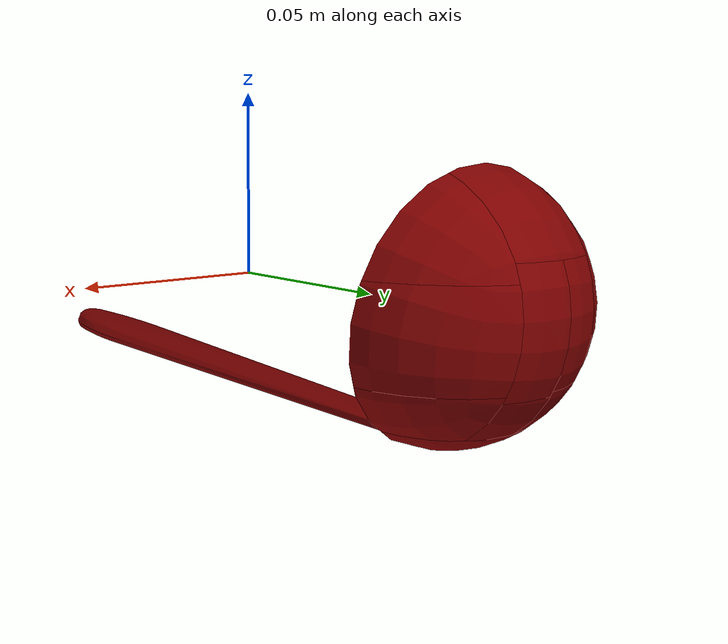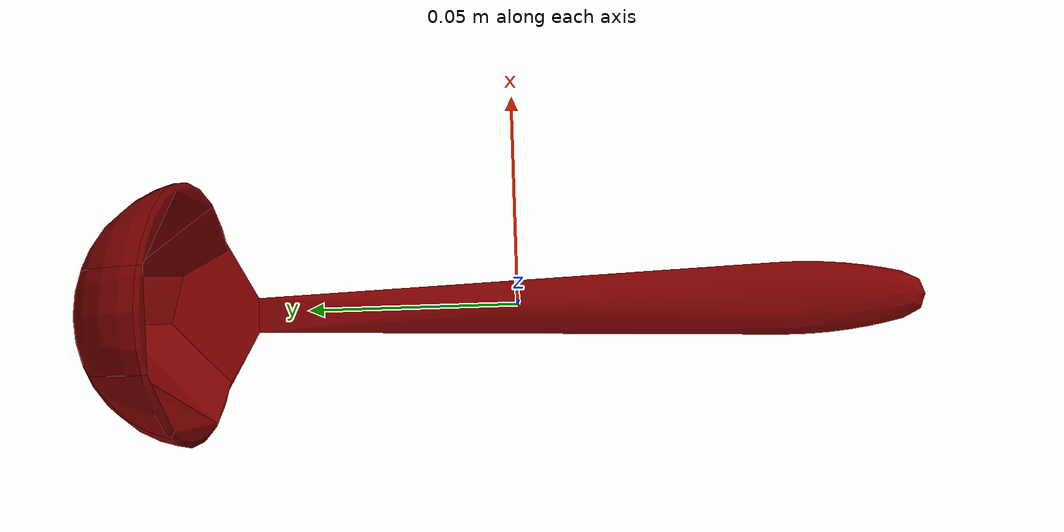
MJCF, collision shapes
<mujoco model="ladle_4">
  <asset>
    <mesh file="visual/model_normalized_0.obj" name="model_normalized_0_vis" scale="0.21000000000000002 0.21000000000000002 0.21000000000000002" refquat="6.869154506741522e-17 1.242026962986731e-16 -0.7071067811865486 0.7071067811865486"/>
    <texture type="2d" name="image0" file="visual/image0.png"/>
    <material name="Material.072" texture="image0" specular="0.5" shininess="0.25"/>
    <mesh file="collision/collision_mesh_collision_0.obj" name="ladle_collision_mesh_0" scale="0.21000000000000002 0.21000000000000002 0.21000000000000002" refquat="6.869154506741522e-17 1.242026962986731e-16 -0.7071067811865486 0.7071067811865486"/>
    <mesh file="collision/collision_mesh_collision_1.obj" name="ladle_collision_mesh_1" scale="0.21000000000000002 0.21000000000000002 0.21000000000000002" refquat="6.869154506741522e-17 1.242026962986731e-16 -0.7071067811865486 0.7071067811865486"/>
    <mesh file="collision/collision_mesh_collision_2.obj" name="ladle_collision_mesh_2" scale="0.21000000000000002 0.21000000000000002 0.21000000000000002" refquat="6.869154506741522e-17 1.242026962986731e-16 -0.7071067811865486 0.7071067811865486"/>
    <mesh file="collision/collision_mesh_collision_3.obj" name="ladle_collision_mesh_3" scale="0.21000000000000002 0.21000000000000002 0.21000000000000002" refquat="6.869154506741522e-17 1.242026962986731e-16 -0.7071067811865486 0.7071067811865486"/>
    <mesh file="collision/collision_mesh_collision_4.obj" name="ladle_collision_mesh_4" scale="0.21000000000000002 0.21000000000000002 0.21000000000000002" refquat="6.869154506741522e-17 1.242026962986731e-16 -0.7071067811865486 0.7071067811865486"/>
    <mesh file="collision/collision_mesh_collision_5.obj" name="ladle_collision_mesh_5" scale="0.21000000000000002 0.21000000000000002 0.21000000000000002" refquat="6.869154506741522e-17 1.242026962986731e-16 -0.7071067811865486 0.7071067811865486"/>
    <mesh file="collision/collision_mesh_collision_6.obj" name="ladle_collision_mesh_6" scale="0.21000000000000002 0.21000000000000002 0.21000000000000002" refquat="6.869154506741522e-17 1.242026962986731e-16 -0.7071067811865486 0.7071067811865486"/>
    <mesh file="collision/collision_mesh_collision_7.obj" name="ladle_collision_mesh_7" scale="0.21000000000000002 0.21000000000000002 0.21000000000000002" refquat="6.869154506741522e-17 1.242026962986731e-16 -0.7071067811865486 0.7071067811865486"/>
    <mesh file="collision/collision_mesh_collision_8.obj" name="ladle_collision_mesh_8" scale="0.21000000000000002 0.21000000000000002 0.21000000000000002" refquat="6.869154506741522e-17 1.242026962986731e-16 -0.7071067811865486 0.7071067811865486"/>
    <mesh file="collision/collision_mesh_collision_9.obj" name="ladle_collision_mesh_9" scale="0.21000000000000002 0.21000000000000002 0.21000000000000002" refquat="6.869154506741522e-17 1.242026962986731e-16 -0.7071067811865486 0.7071067811865486"/>
    <mesh file="collision/collision_mesh_collision_10.obj" name="ladle_collision_mesh_10" scale="0.21000000000000002 0.21000000000000002 0.21000000000000002" refquat="6.869154506741522e-17 1.242026962986731e-16 -0.7071067811865486 0.7071067811865486"/>
    <mesh file="collision/collision_mesh_collision_11.obj" name="ladle_collision_mesh_11" scale="0.21000000000000002 0.21000000000000002 0.21000000000000002" refquat="6.869154506741522e-17 1.242026962986731e-16 -0.7071067811865486 0.7071067811865486"/>
  </asset>
  <default>
    <default class="region">
      <geom group="1" conaffinity="0" contype="0" rgba="0 1 0 0"/>
    </default>
    <default class="collision">
      <geom group="0" rgba="0.5 0 0 0.5" density="1000.0"/>
    </default>
  </default>
  <worldbody>
    <body>
      <body name="object">
        <geom solimp="0.998 0.998 0.001" solref="0.001 1" density="100" friction="0.95 0.3 0.1" type="mesh" mesh="model_normalized_0_vis" conaffinity="0" contype="0" group="1" material="Material.072"/>
        <geom class="region" name="reg_bbox" type="box" pos="9.061499999747648e-07 -4.0635000000177616e-07 3.8849999999951424e-07" size="0.03174727605 0.10499959365000001 0.031765370700000004"/>
        <geom mesh="ladle_collision_mesh_0" type="mesh" class="collision"/>
        <geom mesh="ladle_collision_mesh_1" type="mesh" class="collision"/>
        <geom mesh="ladle_collision_mesh_2" type="mesh" class="collision"/>
        <geom mesh="ladle_collision_mesh_3" type="mesh" class="collision"/>
        <geom mesh="ladle_collision_mesh_4" type="mesh" class="collision"/>
        <geom mesh="ladle_collision_mesh_5" type="mesh" class="collision"/>
        <geom mesh="ladle_collision_mesh_6" type="mesh" class="collision"/>
        <geom mesh="ladle_collision_mesh_7" type="mesh" class="collision"/>
        <geom mesh="ladle_collision_mesh_8" type="mesh" class="collision"/>
        <geom mesh="ladle_collision_mesh_9" type="mesh" class="collision"/>
        <geom mesh="ladle_collision_mesh_10" type="mesh" class="collision"/>
        <geom mesh="ladle_collision_mesh_11" type="mesh" class="collision"/>
      </body>
    </body>
  </worldbody>
</mujoco>
